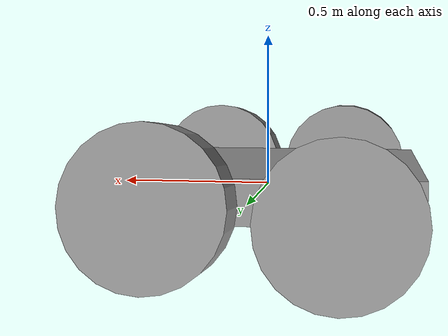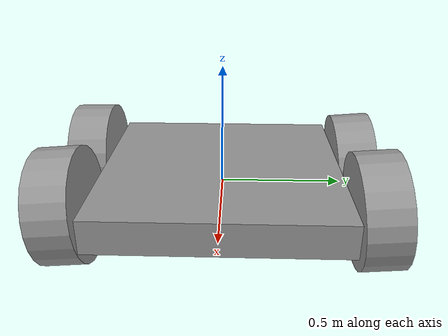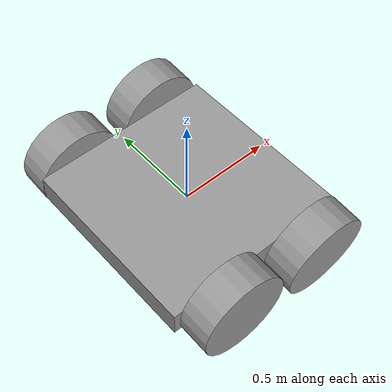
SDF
<?xml version='1.0'?>
<sdf version='1.7'>
  <model name='first_robot_base'>
    <link name='link_0'>
      <inertial>
        <mass>0.137501</mass>
        <inertia>
          <ixx>0.0116751</ixx>
          <ixy>0</ixy>
          <ixz>0</ixz>
          <iyy>0.0116751</iyy>
          <iyz>0</iyz>
          <izz>0.0229169</izz>
        </inertia>
        <pose>0 0 0 0 -0 0</pose>
      </inertial>
      <pose>-0.005148 -0.002648 0.006318 0 -0 0</pose>
      <visual name='visual'>
        <pose>0 0 0 0 -0 0</pose>
        <geometry>
          <box>
            <size>1 1 0.137503</size>
          </box>
        </geometry>
        <material>
          <lighting>1</lighting>
          <script>
            <uri>file://media/materials/scripts/gazebo.material</uri>
            <name>Gazebo/Grey</name>
          </script>
          <shader type='pixel'/>
          <emissive>0 0 0 1</emissive>
        </material>
        <transparency>0</transparency>
        <cast_shadows>1</cast_shadows>
      </visual>
      <collision name='collision'>
        <laser_retro>0</laser_retro>
        <max_contacts>10</max_contacts>
        <pose>0 0 0 0 -0 0</pose>
        <geometry>
          <box>
            <size>1 1 0.137503</size>
          </box>
        </geometry>
        <surface>
          <friction>
            <ode>
              <mu>1</mu>
              <mu2>1</mu2>
              <fdir1>0 0 0</fdir1>
              <slip1>0</slip1>
              <slip2>0</slip2>
            </ode>
            <torsional>
              <coefficient>1</coefficient>
              <patch_radius>0</patch_radius>
              <surface_radius>0</surface_radius>
              <use_patch_radius>1</use_patch_radius>
              <ode>
                <slip>0</slip>
              </ode>
            </torsional>
          </friction>
          <bounce>
            <restitution_coefficient>0</restitution_coefficient>
            <threshold>1e+06</threshold>
          </bounce>
          <contact>
            <collide_without_contact>0</collide_without_contact>
            <collide_without_contact_bitmask>1</collide_without_contact_bitmask>
            <collide_bitmask>1</collide_bitmask>
            <ode>
              <soft_cfm>0</soft_cfm>
              <soft_erp>0.2</soft_erp>
              <kp>1e+13</kp>
              <kd>1</kd>
              <max_vel>0.01</max_vel>
              <min_depth>0</min_depth>
            </ode>
            <bullet>
              <split_impulse>1</split_impulse>
              <split_impulse_penetration_threshold>-0.01</split_impulse_penetration_threshold>
              <soft_cfm>0</soft_cfm>
              <soft_erp>0.2</soft_erp>
              <kp>1e+13</kp>
              <kd>1</kd>
            </bullet>
          </contact>
        </surface>
      </collision>
    </link>
    <link name='link_1'>
      <inertial>
        <mass>0.0371525</mass>
        <inertia>
          <ixx>0.00059675</ixx>
          <ixy>0</ixy>
          <ixz>0</ixz>
          <iyy>0.00059675</iyy>
          <iyz>0</iyz>
          <izz>0.00101436</izz>
        </inertia>
        <pose>0 0 0 0 -0 0</pose>
      </inertial>
      <pose>0.259232 0.601186 0.006318 -0.099282 1.48977 1.47077</pose>
      <gravity>1</gravity>
      <self_collide>0</self_collide>
      <kinematic>0</kinematic>
      <enable_wind>0</enable_wind>
      <visual name='visual'>
        <pose>0 0 0 0 -0 0</pose>
        <geometry>
          <cylinder>
            <radius>0.233677</radius>
            <length>0.170085</length>
          </cylinder>
        </geometry>
        <material>
          <lighting>1</lighting>
          <script>
            <uri>file://media/materials/scripts/gazebo.material</uri>
            <name>Gazebo/Grey</name>
          </script>
          <shader type='pixel'>
            <normal_map>__default__</normal_map>
          </shader>
          <ambient>0.3 0.3 0.3 1</ambient>
          <diffuse>0.7 0.7 0.7 1</diffuse>
          <specular>0.01 0.01 0.01 1</specular>
          <emissive>0 0 0 1</emissive>
        </material>
        <transparency>0</transparency>
        <cast_shadows>1</cast_shadows>
      </visual>
      <collision name='collision'>
        <laser_retro>0</laser_retro>
        <max_contacts>10</max_contacts>
        <pose>0 0 0 0 -0 0</pose>
        <geometry>
          <cylinder>
            <radius>0.233677</radius>
            <length>0.170085</length>
          </cylinder>
        </geometry>
        <surface>
          <friction>
            <ode>
              <mu>1</mu>
              <mu2>1</mu2>
              <fdir1>0 0 0</fdir1>
              <slip1>0</slip1>
              <slip2>0</slip2>
            </ode>
            <torsional>
              <coefficient>1</coefficient>
              <patch_radius>0</patch_radius>
              <surface_radius>0</surface_radius>
              <use_patch_radius>1</use_patch_radius>
              <ode>
                <slip>0</slip>
              </ode>
            </torsional>
          </friction>
          <bounce>
            <restitution_coefficient>0</restitution_coefficient>
            <threshold>1e+06</threshold>
          </bounce>
          <contact>
            <collide_without_contact>0</collide_without_contact>
            <collide_without_contact_bitmask>1</collide_without_contact_bitmask>
            <collide_bitmask>1</collide_bitmask>
            <ode>
              <soft_cfm>0</soft_cfm>
              <soft_erp>0.2</soft_erp>
              <kp>1e+13</kp>
              <kd>1</kd>
              <max_vel>0.01</max_vel>
              <min_depth>0</min_depth>
            </ode>
            <bullet>
              <split_impulse>1</split_impulse>
              <split_impulse_penetration_threshold>-0.01</split_impulse_penetration_threshold>
              <soft_cfm>0</soft_cfm>
              <soft_erp>0.2</soft_erp>
              <kp>1e+13</kp>
              <kd>1</kd>
            </bullet>
          </contact>
        </surface>
      </collision>
    </link>
    <link name='link_1_clone'>
      <inertial>
        <mass>0.0371525</mass>
        <inertia>
          <ixx>0.00059675</ixx>
          <ixy>0</ixy>
          <ixz>0</ixz>
          <iyy>0.00059675</iyy>
          <iyz>0</iyz>
          <izz>0.00101436</izz>
        </inertia>
        <pose>0 0 0 0 -0 0</pose>
      </inertial>
      <pose>-0.269554 0.601186 -0.0307 -0.099282 1.48977 1.47077</pose>
      <gravity>1</gravity>
      <self_collide>0</self_collide>
      <kinematic>0</kinematic>
      <enable_wind>0</enable_wind>
      <visual name='visual'>
        <pose>0 0 0 0 -0 0</pose>
        <geometry>
          <cylinder>
            <radius>0.233677</radius>
            <length>0.170085</length>
          </cylinder>
        </geometry>
        <material>
          <lighting>1</lighting>
          <script>
            <uri>file://media/materials/scripts/gazebo.material</uri>
            <name>Gazebo/Grey</name>
          </script>
          <shader type='pixel'>
            <normal_map>__default__</normal_map>
          </shader>
          <ambient>0.3 0.3 0.3 1</ambient>
          <diffuse>0.7 0.7 0.7 1</diffuse>
          <specular>0.01 0.01 0.01 1</specular>
          <emissive>0 0 0 1</emissive>
        </material>
        <transparency>0</transparency>
        <cast_shadows>1</cast_shadows>
      </visual>
      <collision name='collision'>
        <laser_retro>0</laser_retro>
        <max_contacts>10</max_contacts>
        <pose>0 0 0 0 -0 0</pose>
        <geometry>
          <cylinder>
            <radius>0.233677</radius>
            <length>0.170085</length>
          </cylinder>
        </geometry>
        <surface>
          <friction>
            <ode>
              <mu>1</mu>
              <mu2>1</mu2>
              <fdir1>0 0 0</fdir1>
              <slip1>0</slip1>
              <slip2>0</slip2>
            </ode>
            <torsional>
              <coefficient>1</coefficient>
              <patch_radius>0</patch_radius>
              <surface_radius>0</surface_radius>
              <use_patch_radius>1</use_patch_radius>
              <ode>
                <slip>0</slip>
              </ode>
            </torsional>
          </friction>
          <bounce>
            <restitution_coefficient>0</restitution_coefficient>
            <threshold>1e+06</threshold>
          </bounce>
          <contact>
            <collide_without_contact>0</collide_without_contact>
            <collide_without_contact_bitmask>1</collide_without_contact_bitmask>
            <collide_bitmask>1</collide_bitmask>
            <ode>
              <soft_cfm>0</soft_cfm>
              <soft_erp>0.2</soft_erp>
              <kp>1e+13</kp>
              <kd>1</kd>
              <max_vel>0.01</max_vel>
              <min_depth>0</min_depth>
            </ode>
            <bullet>
              <split_impulse>1</split_impulse>
              <split_impulse_penetration_threshold>-0.01</split_impulse_penetration_threshold>
              <soft_cfm>0</soft_cfm>
              <soft_erp>0.2</soft_erp>
              <kp>1e+13</kp>
              <kd>1</kd>
            </bullet>
          </contact>
        </surface>
      </collision>
    </link>
    <link name='link_1_clone_0'>
      <inertial>
        <mass>0.0371525</mass>
        <inertia>
          <ixx>0.00059675</ixx>
          <ixy>0</ixy>
          <ixz>0</ixz>
          <iyy>0.00059675</iyy>
          <iyz>0</iyz>
          <izz>0.00101436</izz>
        </inertia>
        <pose>0 0 0 0 -0 0</pose>
      </inertial>
      <pose>-0.243786 -0.593246 0.011745 1.38767 1.44317 2.95654</pose>
      <gravity>1</gravity>
      <self_collide>0</self_collide>
      <kinematic>0</kinematic>
      <enable_wind>0</enable_wind>
      <visual name='visual'>
        <pose>0 0 0 0 -0 0</pose>
        <geometry>
          <cylinder>
            <radius>0.233677</radius>
            <length>0.170085</length>
          </cylinder>
        </geometry>
        <material>
          <lighting>1</lighting>
          <script>
            <uri>file://media/materials/scripts/gazebo.material</uri>
            <name>Gazebo/Grey</name>
          </script>
          <shader type='pixel'>
            <normal_map>__default__</normal_map>
          </shader>
          <ambient>0.3 0.3 0.3 1</ambient>
          <diffuse>0.7 0.7 0.7 1</diffuse>
          <specular>0.01 0.01 0.01 1</specular>
          <emissive>0 0 0 1</emissive>
        </material>
        <transparency>0</transparency>
        <cast_shadows>1</cast_shadows>
      </visual>
      <collision name='collision'>
        <laser_retro>0</laser_retro>
        <max_contacts>10</max_contacts>
        <pose>0 0 0 0 -0 0</pose>
        <geometry>
          <cylinder>
            <radius>0.233677</radius>
            <length>0.170085</length>
          </cylinder>
        </geometry>
        <surface>
          <friction>
            <ode>
              <mu>1</mu>
              <mu2>1</mu2>
              <fdir1>0 0 0</fdir1>
              <slip1>0</slip1>
              <slip2>0</slip2>
            </ode>
            <torsional>
              <coefficient>1</coefficient>
              <patch_radius>0</patch_radius>
              <surface_radius>0</surface_radius>
              <use_patch_radius>1</use_patch_radius>
              <ode>
                <slip>0</slip>
              </ode>
            </torsional>
          </friction>
          <bounce>
            <restitution_coefficient>0</restitution_coefficient>
            <threshold>1e+06</threshold>
          </bounce>
          <contact>
            <collide_without_contact>0</collide_without_contact>
            <collide_without_contact_bitmask>1</collide_without_contact_bitmask>
            <collide_bitmask>1</collide_bitmask>
            <ode>
              <soft_cfm>0</soft_cfm>
              <soft_erp>0.2</soft_erp>
              <kp>1e+13</kp>
              <kd>1</kd>
              <max_vel>0.01</max_vel>
              <min_depth>0</min_depth>
            </ode>
            <bullet>
              <split_impulse>1</split_impulse>
              <split_impulse_penetration_threshold>-0.01</split_impulse_penetration_threshold>
              <soft_cfm>0</soft_cfm>
              <soft_erp>0.2</soft_erp>
              <kp>1e+13</kp>
              <kd>1</kd>
            </bullet>
          </contact>
        </surface>
      </collision>
    </link>
    <link name='link_1_clone_1'>
      <inertial>
        <mass>0.0371525</mass>
        <inertia>
          <ixx>0.00059675</ixx>
          <ixy>0</ixy>
          <ixz>0</ixz>
          <iyy>0.00059675</iyy>
          <iyz>0</iyz>
          <izz>0.00101436</izz>
        </inertia>
        <pose>0 0 0 0 -0 0</pose>
      </inertial>
      <pose>0.259262 -0.606483 0.006318 -0.099282 1.48977 1.47077</pose>
      <gravity>1</gravity>
      <self_collide>0</self_collide>
      <kinematic>0</kinematic>
      <enable_wind>0</enable_wind>
      <visual name='visual'>
        <pose>0 0 0 0 -0 0</pose>
        <geometry>
          <cylinder>
            <radius>0.233677</radius>
            <length>0.170085</length>
          </cylinder>
        </geometry>
        <material>
          <lighting>1</lighting>
          <script>
            <uri>file://media/materials/scripts/gazebo.material</uri>
            <name>Gazebo/Grey</name>
          </script>
          <shader type='pixel'>
            <normal_map>__default__</normal_map>
          </shader>
          <ambient>0.3 0.3 0.3 1</ambient>
          <diffuse>0.7 0.7 0.7 1</diffuse>
          <specular>0.01 0.01 0.01 1</specular>
          <emissive>0 0 0 1</emissive>
        </material>
        <transparency>0</transparency>
        <cast_shadows>1</cast_shadows>
      </visual>
      <collision name='collision'>
        <laser_retro>0</laser_retro>
        <max_contacts>10</max_contacts>
        <pose>0 0 0 0 -0 0</pose>
        <geometry>
          <cylinder>
            <radius>0.233677</radius>
            <length>0.170085</length>
          </cylinder>
        </geometry>
        <surface>
          <friction>
            <ode>
              <mu>1</mu>
              <mu2>1</mu2>
              <fdir1>0 0 0</fdir1>
              <slip1>0</slip1>
              <slip2>0</slip2>
            </ode>
            <torsional>
              <coefficient>1</coefficient>
              <patch_radius>0</patch_radius>
              <surface_radius>0</surface_radius>
              <use_patch_radius>1</use_patch_radius>
              <ode>
                <slip>0</slip>
              </ode>
            </torsional>
          </friction>
          <bounce>
            <restitution_coefficient>0</restitution_coefficient>
            <threshold>1e+06</threshold>
          </bounce>
          <contact>
            <collide_without_contact>0</collide_without_contact>
            <collide_without_contact_bitmask>1</collide_without_contact_bitmask>
            <collide_bitmask>1</collide_bitmask>
            <ode>
              <soft_cfm>0</soft_cfm>
              <soft_erp>0.2</soft_erp>
              <kp>1e+13</kp>
              <kd>1</kd>
              <max_vel>0.01</max_vel>
              <min_depth>0</min_depth>
            </ode>
            <bullet>
              <split_impulse>1</split_impulse>
              <split_impulse_penetration_threshold>-0.01</split_impulse_penetration_threshold>
              <soft_cfm>0</soft_cfm>
              <soft_erp>0.2</soft_erp>
              <kp>1e+13</kp>
              <kd>1</kd>
            </bullet>
          </contact>
        </surface>
      </collision>
    </link>
    <joint name='link_0_JOINT_1' type='revolute'>
      <parent>link_0</parent>
      <child>link_1</child>
      <pose>0 0 0 0 -0 0</pose>
      <axis>
        <xyz>0 0 1</xyz>
        <limit>
          <lower>-1.79769e+308</lower>
          <upper>1.79769e+308</upper>
          <effort>-1</effort>
          <velocity>-1</velocity>
        </limit>
        <dynamics>
          <spring_reference>0</spring_reference>
          <spring_stiffness>0</spring_stiffness>
          <damping>0</damping>
        </dynamics>
      </axis>
      <physics>
        <ode>
          <limit>
            <cfm>0</cfm>
            <erp>0.2</erp>
          </limit>
          <suspension>
            <cfm>0</cfm>
            <erp>0.2</erp>
          </suspension>
        </ode>
      </physics>
    </joint>
    <joint name='link_0_JOINT_2' type='revolute'>
      <parent>link_0</parent>
      <child>link_1_clone_1</child>
      <pose>0 0 0 0 -0 0</pose>
      <axis>
        <xyz>0 0 1</xyz>
        <limit>
          <lower>-1.79769e+308</lower>
          <upper>1.79769e+308</upper>
          <effort>-1</effort>
          <velocity>-1</velocity>
        </limit>
        <dynamics>
          <spring_reference>0</spring_reference>
          <spring_stiffness>0</spring_stiffness>
          <damping>0</damping>
        </dynamics>
      </axis>
      <physics>
        <ode>
          <limit>
            <cfm>0</cfm>
            <erp>0.2</erp>
          </limit>
          <suspension>
            <cfm>0</cfm>
            <erp>0.2</erp>
          </suspension>
        </ode>
      </physics>
    </joint>
    <joint name='link_0_JOINT_3' type='revolute'>
      <parent>link_0</parent>
      <child>link_1_clone</child>
      <pose>0 0 0 0 -0 0</pose>
      <axis>
        <xyz>0 0 1</xyz>
        <limit>
          <lower>-1.79769e+308</lower>
          <upper>1.79769e+308</upper>
          <effort>-1</effort>
          <velocity>-1</velocity>
        </limit>
        <dynamics>
          <spring_reference>0</spring_reference>
          <spring_stiffness>0</spring_stiffness>
          <damping>0</damping>
        </dynamics>
      </axis>
      <physics>
        <ode>
          <limit>
            <cfm>0</cfm>
            <erp>0.2</erp>
          </limit>
          <suspension>
            <cfm>0</cfm>
            <erp>0.2</erp>
          </suspension>
        </ode>
      </physics>
    </joint>
    <joint name='link_0_JOINT_4' type='revolute'>
      <parent>link_0</parent>
      <child>link_1_clone_0</child>
      <pose>0 0 0 0 -0 0</pose>
      <axis>
        <xyz>0 0 1</xyz>
        <limit>
          <lower>-1.79769e+308</lower>
          <upper>1.79769e+308</upper>
          <effort>-1</effort>
          <velocity>-1</velocity>
        </limit>
        <dynamics>
          <spring_reference>0</spring_reference>
          <spring_stiffness>0</spring_stiffness>
          <damping>0</damping>
        </dynamics>
      </axis>
      <physics>
        <ode>
          <limit>
            <cfm>0</cfm>
            <erp>0.2</erp>
          </limit>
          <suspension>
            <cfm>0</cfm>
            <erp>0.2</erp>
          </suspension>
        </ode>
      </physics>
    </joint>
    <static>0</static>
    <allow_auto_disable>1</allow_auto_disable>
  </model>
</sdf>
